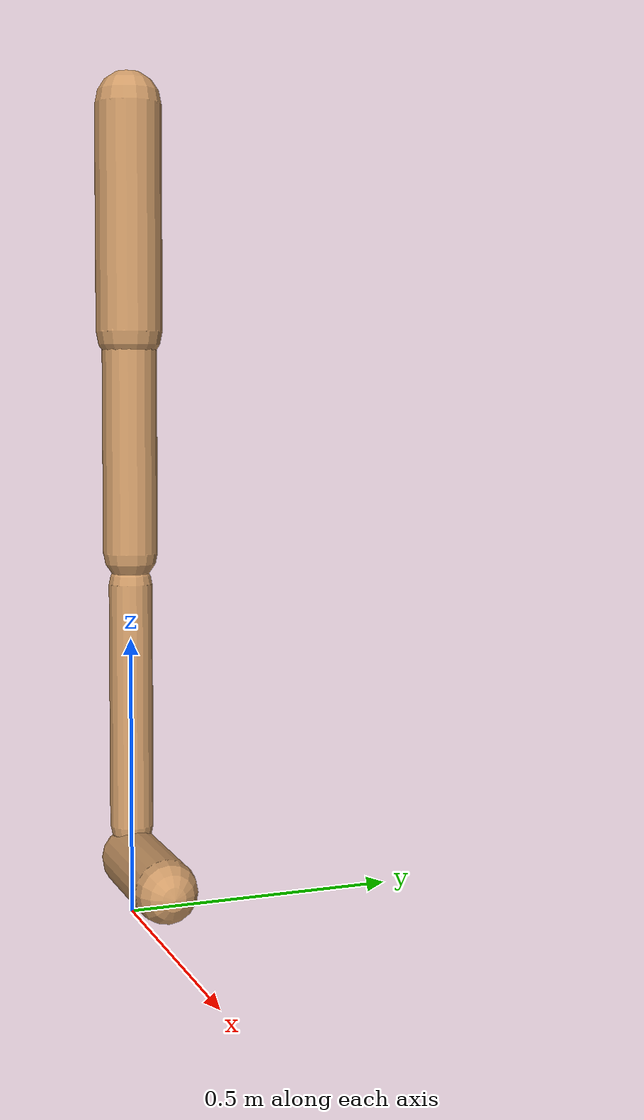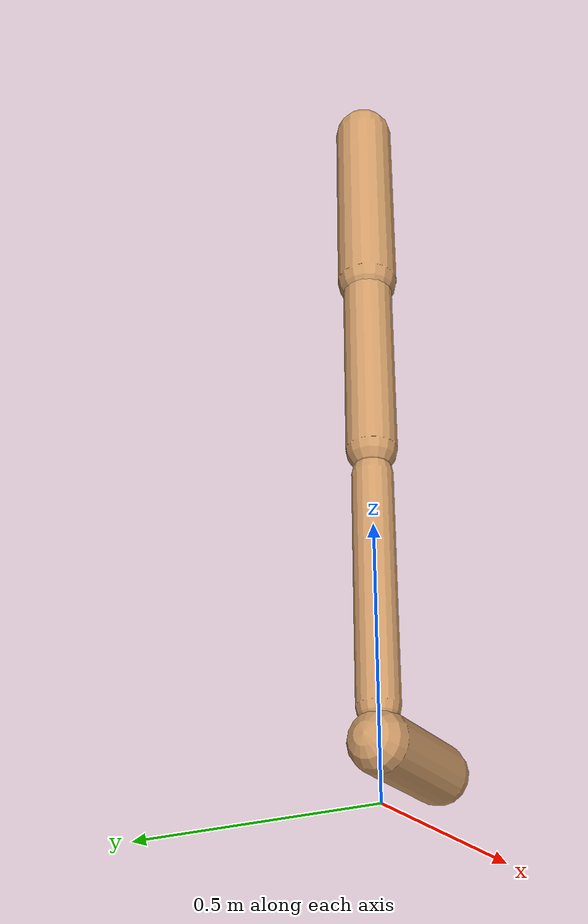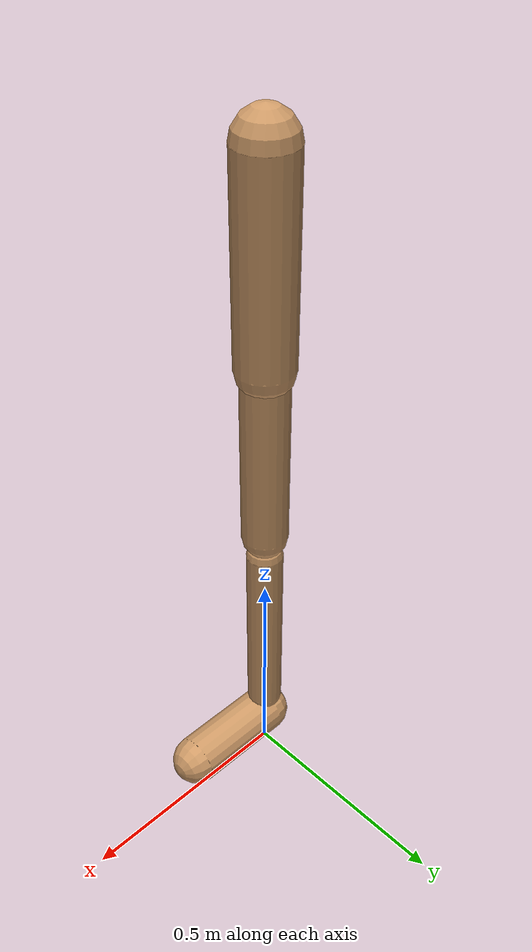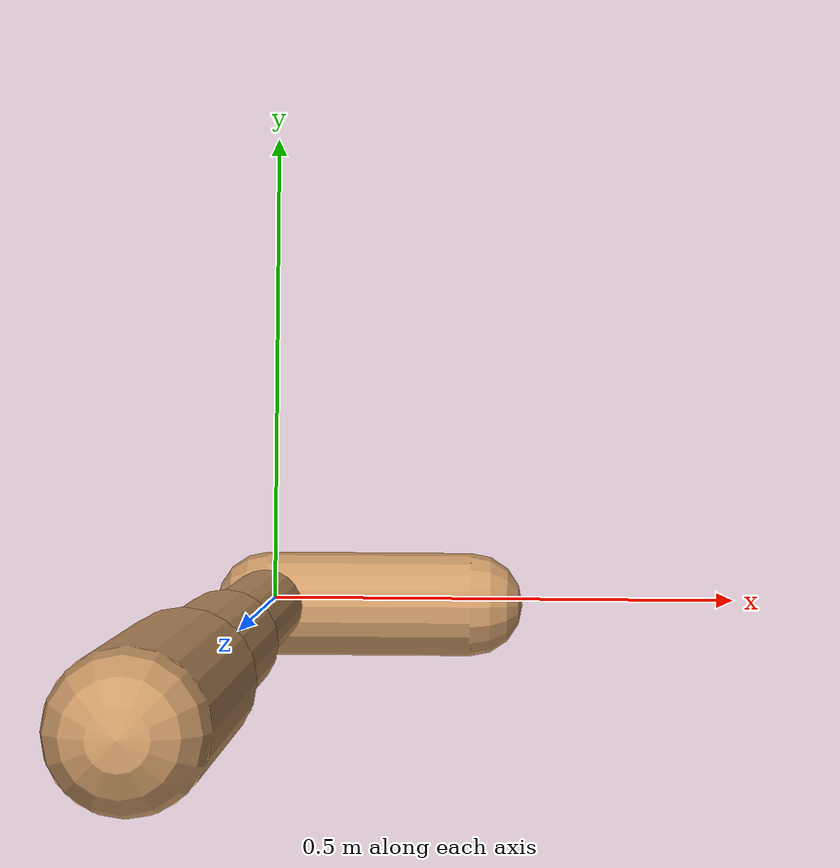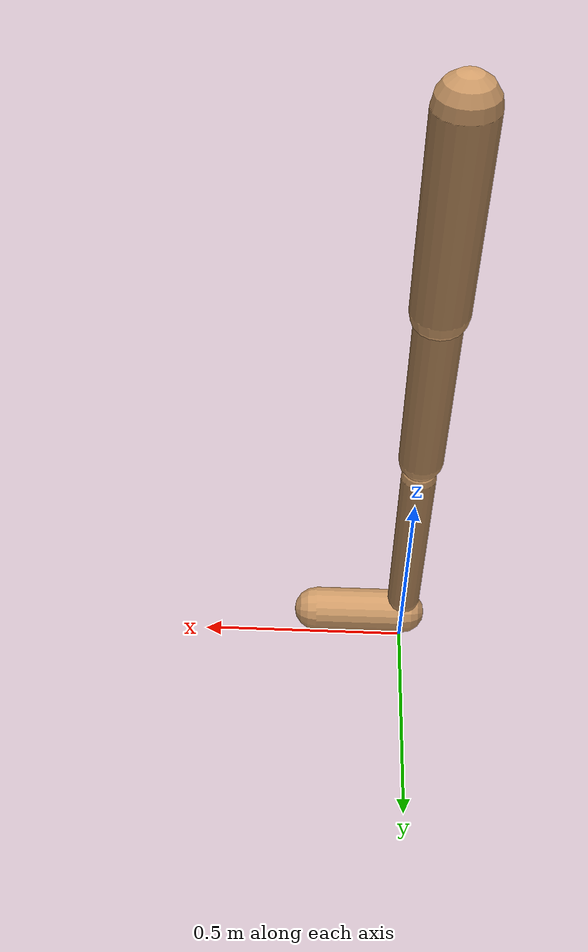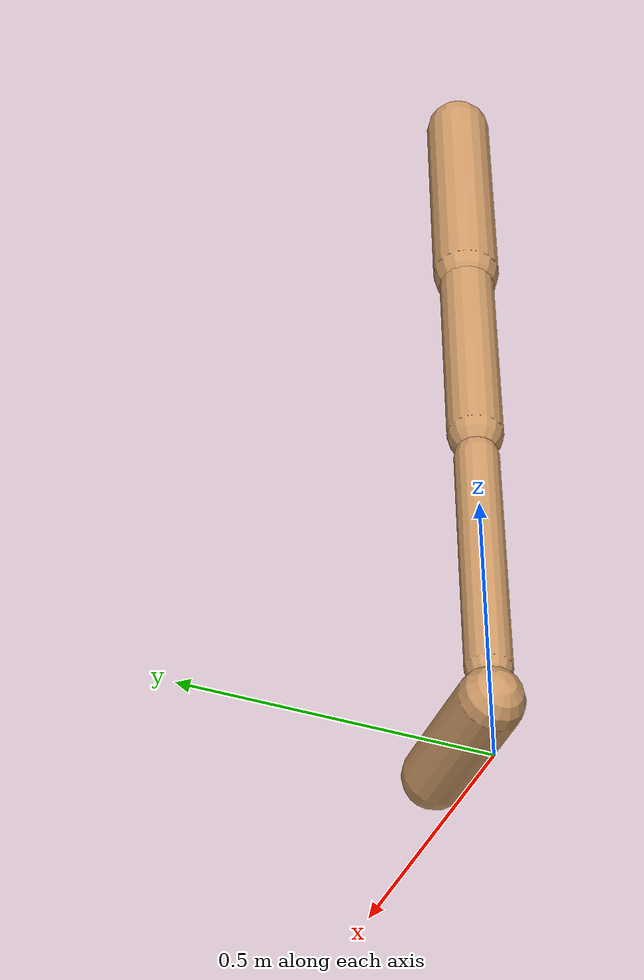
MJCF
<mujoco model="walker2d">
  <compiler angle="degree" coordinate="global" inertiafromgeom="true" />
  <default>
    <joint armature="0.01" damping=".1" limited="true" />
    <geom conaffinity="0" condim="3" contype="1" density="1000" friction="0.8 .1 .1" rgba="0.8 0.6 .4 1" />
  </default>
  <option integrator="RK4" timestep="0.002" />
  <worldbody>

    <body name="torso" pos="0 0 -0.11559369216280085">
      <joint armature="0" axis="1 0 0" damping="0" limited="false" name="ignorex" pos="0 0 0" stiffness="0" type="slide" />
      <joint armature="0" axis="0 0 1" damping="0" limited="false" name="ignorez" pos="0 0 0" ref="1.25" stiffness="0" type="slide" />
      <joint armature="0" axis="0 1 0" damping="0" limited="false" name="ignorey" pos="0 0 0" stiffness="0" type="hinge" />
      <geom fromto="0 0 1.45 0 0 1.05" name="torso_geom" size="0.05914061073531354" type="capsule" />
      <body name="thigh">
        <joint axis="0 -1 0" name="thigh_joint" pos="0 0 1.05" range="-150 0" type="hinge" />
        <geom fromto="0.0 0.0 1.05 0.0 0.0 0.6547549068139583" name="thigh_geom" size="0.048739161417147056" type="capsule" />
        <body name="leg" pos="0.0 0.0 0.05475490681395834">
          <joint axis="0 -1 0" name="leg_joint" pos="0 0 0.6" range="-150 0" type="hinge" />
          <geom fromto="0.0 0.0 0.6 0.0 0.0 0.16083878534884255" name="leg_geom" size="0.038991329133717646" type="capsule" />
          <body name="foot" pos="0.0 0.0 0.060838785348842545">
            <joint axis="0 -1 0" name="foot_joint" pos="0 0 0.1" range="-45 45" type="hinge" />
            <geom fromto="-0.0 0.0 0.09999999999999999 0.21531381203286926 0.0 0.09999999999999999" name="foot_geom" size="0.054597765436674335" type="capsule" />
          </body>
        </body>
      </body>

      <body name="thigh_left">
        <joint axis="0 -1 0" name="thigh_left_joint" pos="0 0 1.05" range="-150 0" type="hinge" />
        <geom fromto="0.0 0.0 1.05 0.0 0.0 0.6547549068139583" name="thigh_left_geom" rgba=".7 .3 .6 1" size="0.048739161417147056" type="capsule" />
        <body name="leg_left" pos="0.0 0.0 0.05475490681395834">
          <joint axis="0 -1 0" name="leg_left_joint" pos="0 0 0.6" range="-150 0" type="hinge" />
          <geom fromto="0.0 0.0 0.6 0.0 0.0 0.16083878534884255" name="leg_left_geom" rgba=".7 .3 .6 1" size="0.038991329133717646" type="capsule" />
          <body name="foot_left" pos="0.0 0.0 0.060838785348842545">
            <joint axis="0 -1 0" name="foot_left_joint" pos="0 0 0.1" range="-45 45" type="hinge" />
            <geom fromto="-0.0 0.0 0.09999999999999999 0.21531381203286926 0.0 0.09999999999999999" name="foot_left_geom" rgba=".7 .3 .6 1" size="0.054597765436674335" type="capsule" />
          </body>
        </body>
      </body>
    </body>
  </worldbody>
  <actuator>

    <motor ctrllimited="true" ctrlrange="-1.0 1.0" gear="100" joint="thigh_joint" />
    <motor ctrllimited="true" ctrlrange="-1.0 1.0" gear="100" joint="leg_joint" />
    <motor ctrllimited="true" ctrlrange="-1.0 1.0" gear="100" joint="foot_joint" />
    <motor ctrllimited="true" ctrlrange="-1.0 1.0" gear="100" joint="thigh_left_joint" />
    <motor ctrllimited="true" ctrlrange="-1.0 1.0" gear="100" joint="leg_left_joint" />
    <motor ctrllimited="true" ctrlrange="-1.0 1.0" gear="100" joint="foot_left_joint" />

  </actuator>
</mujoco>
